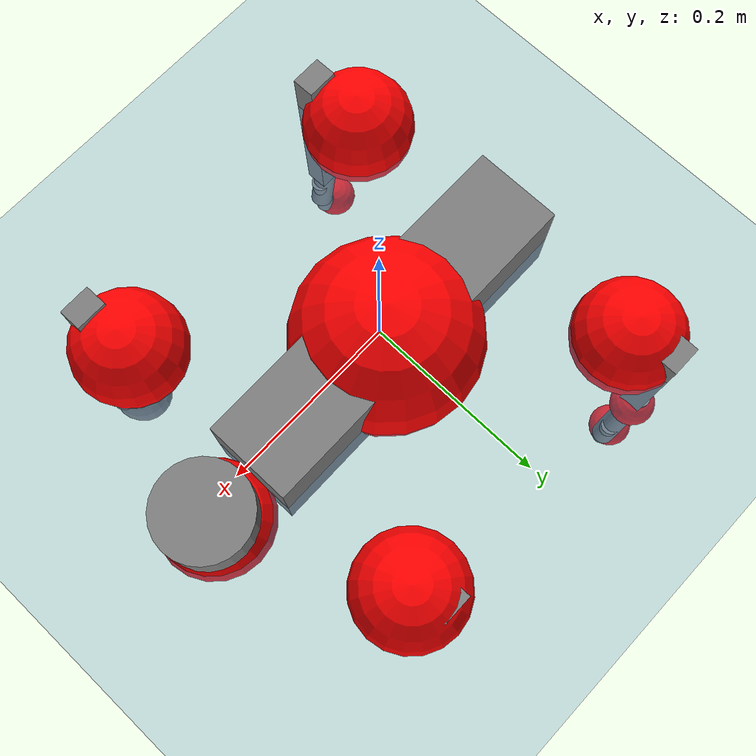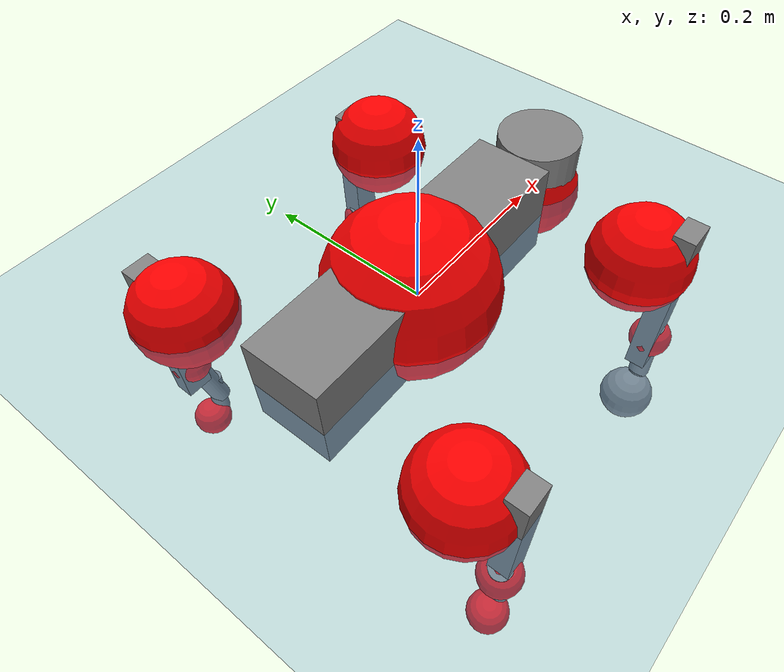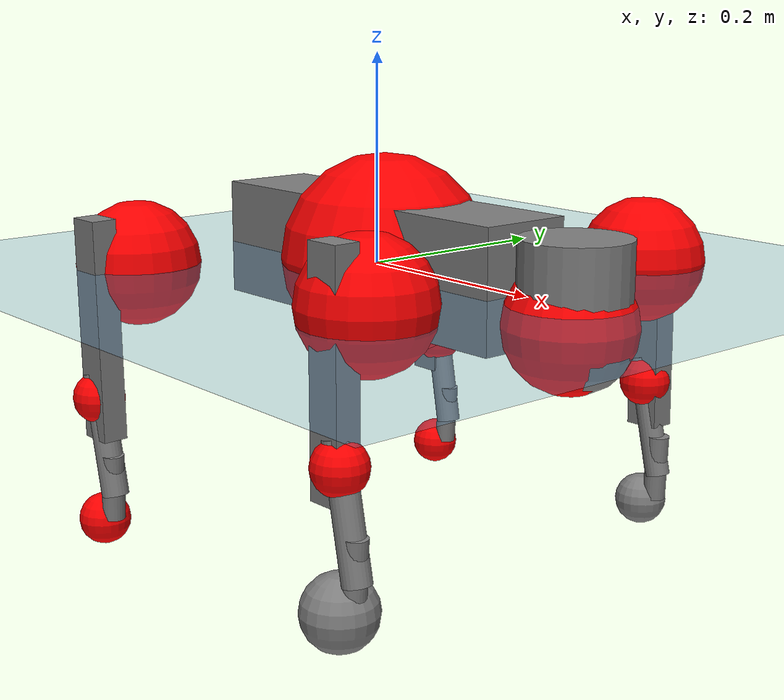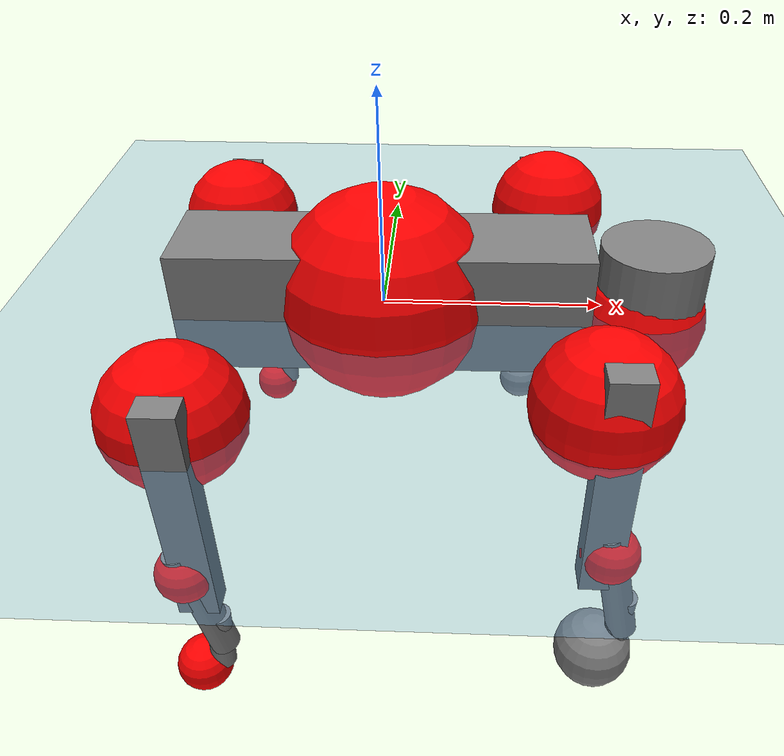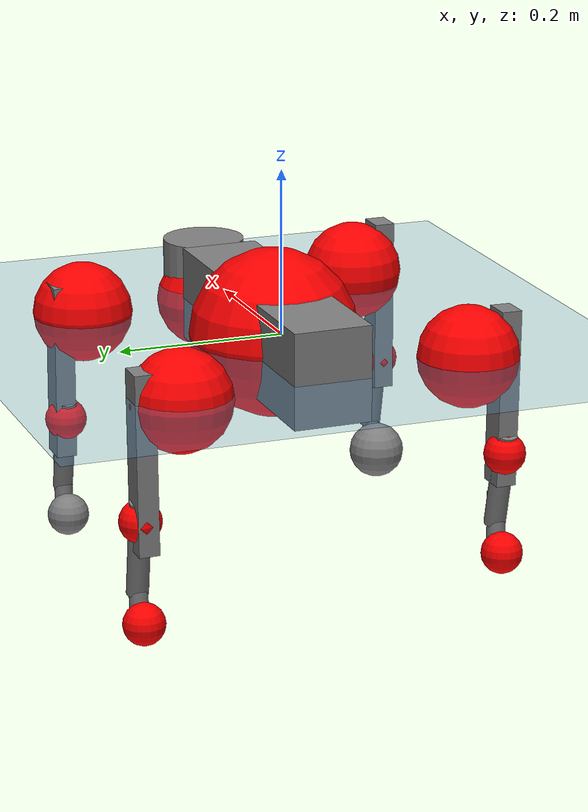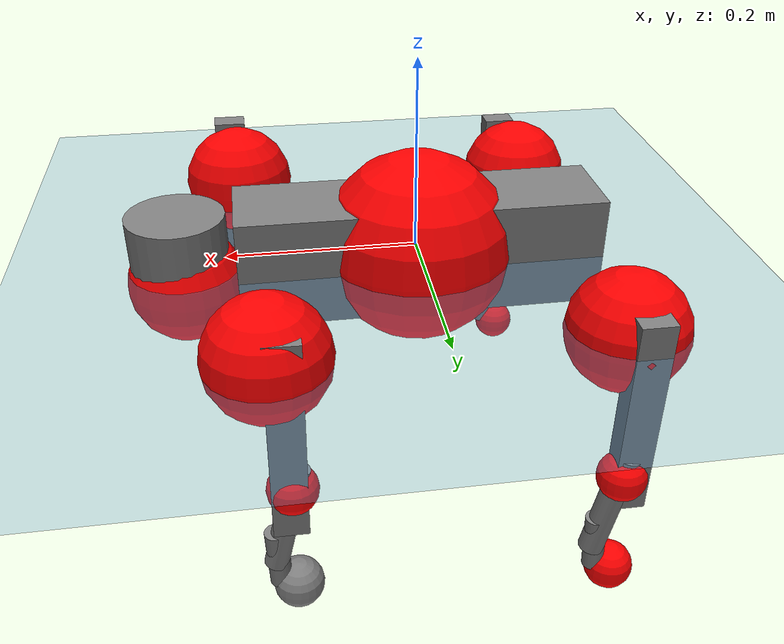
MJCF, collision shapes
<mujoco model="go2">
  <compiler angle="radian" assetdir="assets" balanceinertia="true" inertiafromgeom="false"/>

  <option timestep="0.005" density="1.2" viscosity="2e-05"/>

  <size nkey="1"/>

  <visual>
    <quality shadowsize="8192"/>
    <map shadowclip="0.5"/>
  </visual>

  <default>
    <default class="/">
      <geom contype="0" conaffinity="0" group="1" solref="-1000 -80"/>
      <site size="0.01 0.005 0.005" group="5"/>
      <general forcelimited="true" biastype="affine" gainprm="20" biasprm="0 -20 -0.5"/>
      <default class="go2">
        <joint armature="0.01" damping="0.01" frictionloss="0.2"/>
        <geom condim="1" margin="0.001"/>
        <default class="visual">
          <geom type="mesh" group="2"/>
        </default>
        <default class="collision">
          <geom group="3"/>
          <default class="foot">
            <geom size="0.022 0 0" condim="6" priority="1" friction="0.8 0.02 0.01" solimp="0.015 1 0.022"/>
          </default>
        </default>
        <default class="reward_collision_sphere">
          <geom group="5" rgba="1 0 0 1"/>
        </default>
      </default>
    </default>
  </default>

  <asset>
    <texture type="skybox" colorspace="auto" name="//unnamed_texture_0" builtin="gradient" rgb1="0.95 0.95 0.95" rgb2="0.95 0.95 0.95" width="100" height="600"/>
    <texture type="2d" colorspace="auto" name="texplane" builtin="checker" rgb1="0.345 0.575 0.748" rgb2="0.345 0.575 0.748" markrgb="1 1 1" width="512" height="512"/>
    <material name="MatPlane" class="/" texture="texplane" texuniform="true" texrepeat="2 2" specular="0.9"/>
    <material name="metal" class="/" rgba="0.9 0.95 0.95 1"/>
    <material name="black" class="/" rgba="0 0 0 1"/>
    <material name="white" class="/"/>
    <material name="gray" class="/" rgba="0.671705 0.692426 0.77427 1"/>
    <mesh name="base_0" class="/" file="base_0.obj"/>
    <mesh name="base_1" class="/" file="base_1.obj"/>
    <mesh name="base_2" class="/" file="base_2.obj"/>
    <mesh name="base_3" class="/" file="base_3.obj"/>
    <mesh name="base_4" class="/" file="base_4.obj"/>
    <mesh name="hip_0" class="/" file="hip_0.obj"/>
    <mesh name="hip_1" class="/" file="hip_1.obj"/>
    <mesh name="thigh_0" class="/" file="thigh_0.obj"/>
    <mesh name="thigh_1" class="/" file="thigh_1.obj"/>
    <mesh name="thigh_mirror_0" class="/" file="thigh_mirror_0.obj"/>
    <mesh name="thigh_mirror_1" class="/" file="thigh_mirror_1.obj"/>
    <mesh name="calf_0" class="/" file="calf_0.obj"/>
    <mesh name="calf_1" class="/" file="calf_1.obj"/>
    <mesh name="calf_mirror_0" class="/" file="calf_mirror_0.obj"/>
    <mesh name="calf_mirror_1" class="/" file="calf_mirror_1.obj"/>
    <mesh name="foot" class="/" file="foot.obj"/>
  </asset>

  <worldbody>
    <geom name="floor" class="/" size="100 100 0.125" type="plane" group="0" material="MatPlane"/>
    <light name="toplight_shadow" class="/" pos="0 0 5" dir="0.0990148 0.0990148 -0.990148" type="directional" ambient="0.04 0.04 0.04" diffuse="0.55 0.55 0.55" specular="0.12 0.12 0.12"/>
    <light name="toplight_fill" class="/" pos="0 0 5" dir="0.0990148 0.0990148 -0.990148" type="directional" castshadow="false" ambient="0.04 0.04 0.04" diffuse="0.3 0.3 0.3" specular="0.08 0.08 0.08"/>
    <body name="trunk" childclass="go2" pos="-0.000263478 0.00961262 0.00510487" quat="0.999988 -0.00234063 -0.00187796 0.00379368">
      <inertial pos="0.026451 0.0145625 -0.0131333" quat="-0.0153036 0.686388 -0.00714014 0.72704" mass="7.09362" diaginertia="0.0715382 1.06492 0.00164023"/>
      <joint name="//unnamed_joint_0" type="free" armature="0" damping="0" frictionloss="0"/>
      <geom name="//unnamed_geom_1" class="visual" material="black" mesh="base_0"/>
      <geom name="//unnamed_geom_2" class="visual" material="black" mesh="base_1"/>
      <geom name="//unnamed_geom_3" class="visual" material="black" mesh="base_2"/>
      <geom name="//unnamed_geom_4" class="visual" material="white" mesh="base_3"/>
      <geom name="//unnamed_geom_5" class="visual" material="gray" mesh="base_4"/>
      <geom name="trunk_1" class="collision" size="0.188522 0.046855 0.057128" type="box"/>
      <geom name="trunk_2" class="collision" size="0.0501123 0.045101" pos="0.246106 0 0.00581668" type="cylinder"/>
      <geom name="trunk_3" class="collision" size="0.0471055" pos="0.253014 0 -0.0349001"/>
      <geom name="//unnamed_geom_9" class="reward_collision_sphere" size="0.100225"/>
      <geom name="//unnamed_geom_10" class="reward_collision_sphere" size="0.0601347" pos="0.241788 0 -0.0261751"/>
      <site name="imu" pos="-0.0132669 -0.00451444 0.020198" size="0.0100225"/>
      <camera name="track" pos="0 -3.12308 0" quat="0.707107 0.707107 0 0" mode="trackcom"/>
      <camera name="ego_camera" pos="0.269421 0 0.0261751" quat="-0.5 -0.5 0.5 0.5"/>
      <body name="FL_hip" pos="0.16551 0.0742756 -0.00167413" quat="1 0.000234799 6.56431e-05 -4.85166e-05">
        <inertial pos="-0.00305753 0.0148352 0.000574802" quat="0.518323 0.529127 0.436329 0.510865" mass="0.651212" diaginertia="0.000410868 0.00575458 3.07836e-05"/>
        <joint name="FL_hip_joint" pos="0 0 0" axis="0.999151 0.0257379 -0.0321559" range="-0.889414 1.10584" armature="0.0111207" damping="0.00665164" frictionloss="0.194671"/>
        <geom name="//unnamed_geom_11" class="visual" material="metal" mesh="hip_0"/>
        <geom name="//unnamed_geom_12" class="visual" material="gray" mesh="hip_1"/>
        <geom name="//unnamed_geom_13" class="collision" size="0.0461033 0.0200449" pos="0 0.124923 0" quat="0.707107 0.707107 0 0" type="cylinder"/>
        <geom name="//unnamed_geom_14" class="reward_collision_sphere" size="0.0601347" pos="0 0.109308 0"/>
        <body name="FL_thigh" pos="-0.0116084 0.141229 -0.00469022" quat="0.999972 0.000840893 -0.00745548 -2.18691e-05">
          <inertial pos="-0.00332861 -0.049864 -0.0160427" quat="0.816908 0.0711298 -0.0363822 0.571207" mass="1.05283" diaginertia="0.00333439 0.0447686 5.84404e-05"/>
          <joint name="FL_thigh_joint" pos="0 0 0" axis="-0.0492775 0.998752 -0.00815552" range="-1.37432 3.7621" armature="0.00253353" damping="0" frictionloss="0.283106"/>
          <geom name="//unnamed_geom_15" class="visual" material="metal" mesh="thigh_0"/>
          <geom name="//unnamed_geom_16" class="visual" material="gray" mesh="thigh_1"/>
          <geom name="//unnamed_geom_17" class="collision" size="0.106739 0.0122775 0.0170382" pos="0 0 -0.0619477" quat="0.707107 0 0.707107 0" type="box"/>
          <body name="FL_calf" pos="-0.00350804 -0.00351701 -0.124643" quat="1 -0.000324553 -0.00020285 0.000437042">
            <inertial pos="0.0182167 0.00812406 -0.0708088" quat="0.720384 0.0251485 0.00395042 0.693108" mass="0.251944" diaginertia="0.000807452 0.0125807 4.02884e-06"/>
            <joint name="FL_calf_joint" pos="0 0 0" axis="-0.0226484 0.999539 -0.0202385" range="-3.02497 -1.06368" armature="0.014507" damping="0.0705877" frictionloss="0.146764"/>
            <geom name="//unnamed_geom_18" class="visual" material="gray" mesh="calf_0"/>
            <geom name="//unnamed_geom_19" class="visual" material="black" mesh="calf_1"/>
            <geom name="FL_calf0" class="collision" size="0.0120269 0.0601347" pos="0.00690824 0 -0.0349001" quat="0.994493 0 -0.104807 0" type="cylinder"/>
            <geom name="//unnamed_geom_21" class="collision" size="0.0110247 0.032573" pos="0.0172706 0 -0.0860869" quat="0.999688 0 0.0249974 0" type="cylinder"/>
            <geom name="//unnamed_geom_22" class="visual" pos="0 0 -0.123895" quat="1 0 0 0" material="black" mesh="foot"/>
            <geom name="FL_foot" class="foot" size="0.0252863" pos="-0.00172706 0 -0.123895"/>
            <geom name="//unnamed_geom_24" class="reward_collision_sphere" size="0.0250561"/>
            <geom name="//unnamed_geom_25" class="reward_collision_sphere" size="0.0250561" pos="-0.00172706 0 -0.123895"/>
            <site name="FL_foot" class="foot" pos="-0.00172706 0 -0.123895" size="0.0100225"/>
          </body>
        </body>
      </body>
      <body name="FR_hip" pos="0.181884 -0.0655431 0.00774138" quat="0.999998 0.000601102 0.000576715 0.00167477">
        <inertial pos="-0.00212993 -0.00923177 0.00667025" quat="0.473643 0.546393 0.518346 0.456546" mass="0.735339" diaginertia="0.000478942 0.00553879 2.9751e-05"/>
        <joint name="FR_hip_joint" pos="0 0 0" axis="0.999138 0.0414778 0.00181604" stiffness="0.0772171" range="-1.08156 0.801855" armature="0.0131126" damping="0.0114109" frictionloss="0.153116"/>
        <geom name="//unnamed_geom_26" class="visual" pos="0 8.53622e-09 3.66136e-07" quat="4.63268e-05 1 0 0" material="metal" mesh="hip_0"/>
        <geom name="//unnamed_geom_27" class="visual" pos="0 1.38382e-08 -9.05595e-07" quat="4.63268e-05 1 0 0" material="gray" mesh="hip_1"/>
        <geom name="//unnamed_geom_28" class="collision" size="0.0461033 0.0200449" pos="0 -0.124923 0" quat="0.707107 0.707107 0 0" type="cylinder"/>
        <geom name="//unnamed_geom_29" class="reward_collision_sphere" size="0.0601347" pos="0 -0.109308 0"/>
        <body name="FR_thigh" pos="0.00639279 -0.14842 0.012802" quat="0.999999 -5.12518e-05 -0.000933901 0.000852667">
          <inertial pos="-0.01081 0.0440987 -0.0325323" quat="0.542131 0.00556595 0.0910951 0.835323" mass="1.07493" diaginertia="0.00315692 0.0537847 5.79792e-05"/>
          <joint name="FR_thigh_joint" pos="0 0 0" axis="-0.0136856 -0.999856 0.00999785" range="-3.48682 1.45814" armature="0.0158834" damping="0" frictionloss="0.290708"/>
          <geom name="//unnamed_geom_30" class="visual" material="metal" mesh="thigh_mirror_0"/>
          <geom name="//unnamed_geom_31" class="visual" material="gray" mesh="thigh_mirror_1"/>
          <geom name="//unnamed_geom_32" class="collision" size="0.106739 0.0122775 0.0170382" pos="0 0 -0.0619477" quat="0.707107 0 0.707107 0" type="box"/>
          <body name="FR_calf" pos="0.00716648 -0.00105324 -0.136832" quat="0.999998 0.000422663 -0.000322556 0.00176743">
            <inertial pos="0.0144823 -0.00847717 -0.0844826" quat="0.686093 -0.00554223 0.0239481 0.727099" mass="0.197242" diaginertia="0.000626926 0.00965861 3.19579e-06"/>
            <joint name="FR_calf_joint" pos="0 0 0" axis="0.00747537 -0.999972 6.31767e-05" range="0.728479 2.63227" armature="0.0112208" damping="0.0801516" frictionloss="0.259362"/>
            <geom name="//unnamed_geom_33" class="visual" material="gray" mesh="calf_mirror_0"/>
            <geom name="//unnamed_geom_34" class="visual" material="black" mesh="calf_mirror_1"/>
            <geom name="FR_calf0" class="collision" size="0.0130292 0.0601347" pos="0.0086353 0 -0.0349001" quat="0.995004 0 -0.0998334 0" type="cylinder"/>
            <geom name="//unnamed_geom_36" class="collision" size="0.0110247 0.032573" pos="0.0172706 0 -0.0860869" quat="0.999688 0 0.0249974 0" type="cylinder"/>
            <geom name="//unnamed_geom_37" class="visual" pos="0 0 -0.123895" quat="1 0 0 0" material="black" mesh="foot"/>
            <geom name="FR_foot" class="foot" size="0.0343346" pos="-0.00172706 0 -0.123895"/>
            <geom name="//unnamed_geom_39" class="reward_collision_sphere" size="0.0250561"/>
            <geom name="//unnamed_geom_40" class="reward_collision_sphere" size="0.0250561" pos="-0.00172706 0 -0.123895"/>
            <site name="FR_foot" class="foot" pos="-0.00172706 0 -0.123895" size="0.0100225"/>
          </body>
        </body>
      </body>
      <body name="RL_hip" pos="-0.168654 0.0650748 -0.0107612" quat="1 -0.000252848 2.69217e-06 5.95889e-05">
        <inertial pos="0.00125409 0.00674382 -0.00895615" quat="0.509146 0.511424 0.48302 0.49589" mass="0.875421" diaginertia="0.000476674 0.00652109 3.08276e-05"/>
        <joint name="RL_hip_joint" pos="0 0 0" axis="-0.999474 -0.0299312 0.0125213" range="-1.2895 1.16079" armature="0.0118586" damping="0.00967616" frictionloss="0.0907053"/>
        <geom name="//unnamed_geom_41" class="visual" pos="-2.45546e-09 0 -4.81327e-07" quat="4.63268e-05 0 1 0" material="metal" mesh="hip_0"/>
        <geom name="//unnamed_geom_42" class="visual" pos="-3.9806e-09 0 -4.26869e-07" quat="4.63268e-05 0 1 0" material="gray" mesh="hip_1"/>
        <geom name="//unnamed_geom_43" class="collision" size="0.0461033 0.0200449" pos="0 0.124923 0" quat="0.707107 0.707107 0 0" type="cylinder"/>
        <geom name="//unnamed_geom_44" class="reward_collision_sphere" size="0.0601347" pos="0 0.109308 0"/>
        <body name="RL_thigh" pos="-0.00245072 0.15654 -0.00428322" quat="0.999977 -0.00341386 0.00216517 -0.00549984">
          <inertial pos="-0.00370025 -0.0506065 -0.0245823" quat="0.840438 0.131109 -0.0210386 0.525387" mass="1.35269" diaginertia="0.00310777 0.047953 4.8571e-05"/>
          <joint name="RL_thigh_joint" pos="0 0 0" axis="-0.0742844 0.997183 -0.010433" stiffness="0.00921658" range="-0.481837 4.5471" armature="0.00522262" damping="0" frictionloss="0.283459"/>
          <geom name="//unnamed_geom_45" class="visual" material="metal" mesh="thigh_0"/>
          <geom name="//unnamed_geom_46" class="visual" material="gray" mesh="thigh_1"/>
          <geom name="//unnamed_geom_47" class="collision" size="0.106739 0.0122775 0.0170382" pos="0 0 -0.0619477" quat="0.707107 0 0.707107 0" type="box"/>
          <body name="RL_calf" pos="0.00682479 0.00239565 -0.133978" quat="0.999992 -0.00264579 0.000553154 0.00293584">
            <inertial pos="0.00600189 -0.0127561 -0.0808033" quat="0.707453 0.00179518 -0.00742314 0.706719" mass="0.248972" diaginertia="0.000777912 0.0148137 3.88328e-06"/>
            <joint name="RL_calf_joint" pos="0 0 0" axis="-0.00742358 0.999957 -0.00552385" range="-3.01586 -0.819741" armature="0.00243844" damping="0" frictionloss="0.293424"/>
            <geom name="//unnamed_geom_48" class="visual" material="gray" mesh="calf_0"/>
            <geom name="//unnamed_geom_49" class="visual" material="black" mesh="calf_1"/>
            <geom name="RL_calf0" class="collision" size="0.0130292 0.0601347" pos="0.0086353 0 -0.0349001" quat="0.995004 0 -0.0998334 0" type="cylinder"/>
            <geom name="//unnamed_geom_51" class="collision" size="0.0110247 0.032573" pos="0.0172706 0 -0.0860869" quat="0.999688 0 0.0249974 0" type="cylinder"/>
            <geom name="//unnamed_geom_52" class="visual" pos="0 0 -0.123895" quat="1 0 0 0" material="black" mesh="foot"/>
            <geom name="RL_foot" class="foot" size="0.0230159" pos="-0.00172706 0 -0.123895"/>
            <geom name="//unnamed_geom_54" class="reward_collision_sphere" size="0.0250561"/>
            <geom name="//unnamed_geom_55" class="reward_collision_sphere" size="0.0250561" pos="-0.00172706 0 -0.123895"/>
            <site name="RL_foot" class="foot" pos="-0.00172706 0 -0.123895" size="0.0100225"/>
          </body>
        </body>
      </body>
      <body name="RR_hip" pos="-0.152399 -0.0728404 -0.00423081" quat="0.99997 0.00771807 0.000816135 -0.000597845">
        <inertial pos="0.00372156 0.00202958 0.00213545" quat="0.498233 0.496598 0.497501 0.50759" mass="0.737405" diaginertia="0.000468381 0.00567225 2.81032e-05"/>
        <joint name="RR_hip_joint" pos="0 0 0" axis="-0.999981 -0.00619546 0.000519618" range="-0.977833 0.85185" armature="0.00333987" damping="0.0153803" frictionloss="0.111106"/>
        <geom name="//unnamed_geom_56" class="visual" pos="2.47963e-09 8.53622e-09 -8.47463e-07" quat="2.14617e-09 4.63268e-05 4.63268e-05 -1" material="metal" mesh="hip_0"/>
        <geom name="//unnamed_geom_57" class="visual" pos="3.92083e-09 1.38382e-08 4.78726e-07" quat="2.14617e-09 4.63268e-05 4.63268e-05 -1" material="gray" mesh="hip_1"/>
        <geom name="//unnamed_geom_58" class="collision" size="0.0461033 0.0200449" pos="0 -0.124923 0" quat="0.707107 0.707107 0 0" type="cylinder"/>
        <geom name="//unnamed_geom_59" class="reward_collision_sphere" size="0.0601347" pos="0 -0.109308 0"/>
        <body name="RR_thigh" pos="0.0099001 -0.160201 0.00543987" quat="0.999995 0.000872194 0.00206272 0.0022877">
          <inertial pos="-0.00254884 0.0455369 -0.0176305" quat="0.560044 -0.0194835 0.0928507 0.823013" mass="1.03428" diaginertia="0.00278188 0.0546946 6.22111e-05"/>
          <joint name="RR_thigh_joint" pos="0 0 0" axis="0.000561624 -0.999999 0.0014431" range="-4.55263 0.219144" armature="0.0173063" damping="0" frictionloss="0.2125"/>
          <geom name="//unnamed_geom_60" class="visual" material="metal" mesh="thigh_mirror_0"/>
          <geom name="//unnamed_geom_61" class="visual" material="gray" mesh="thigh_mirror_1"/>
          <geom name="//unnamed_geom_62" class="collision" size="0.106739 0.0122775 0.0170382" pos="0 0 -0.0619477" quat="0.707107 0 0.707107 0" type="box"/>
          <body name="RR_calf" pos="-0.00855873 -0.000736635 -0.130609" quat="1 -3.185e-06 0.000628622 0.000562231">
            <inertial pos="0.0138726 -0.00145245 -0.0833175" quat="0.703635 -0.00951908 -0.000324108 0.710498" mass="0.216729" diaginertia="0.000681926 0.0124949 3.66158e-06"/>
            <joint name="RR_calf_joint" pos="0 0 0" axis="-0.055018 -0.998484 -0.00144345" range="0.582893 2.57514" armature="0.0117229" damping="0.012361" frictionloss="0.118662"/>
            <geom name="//unnamed_geom_63" class="visual" material="gray" mesh="calf_mirror_0"/>
            <geom name="//unnamed_geom_64" class="visual" material="black" mesh="calf_mirror_1"/>
            <geom name="RR_calf0" class="collision" size="0.0130292 0.0601347" pos="0.0086353 0 -0.0349001" quat="0.995004 0 -0.0998334 0" type="cylinder"/>
            <geom name="//unnamed_geom_66" class="collision" size="0.0110247 0.032573" pos="0.0172706 0 -0.0860869" quat="0.999688 0 0.0249974 0" type="cylinder"/>
            <geom name="//unnamed_geom_67" class="visual" pos="0 0 -0.123895" quat="1 0 0 0" material="black" mesh="foot"/>
            <geom name="RR_foot" class="foot" size="0.00933353" pos="-0.00172706 0 -0.123895"/>
            <geom name="//unnamed_geom_69" class="reward_collision_sphere" size="0.0250561"/>
            <geom name="//unnamed_geom_70" class="reward_collision_sphere" size="0.0250561" pos="-0.00172706 0 -0.123895"/>
            <site name="RR_foot" class="foot" pos="-0.00172706 0 -0.123895" size="0.0100225"/>
          </body>
        </body>
      </body>
    </body>
  </worldbody>

  <contact>
    <pair class="/" geom1="floor" geom2="FL_foot" name="//unnamed_contact_0"/>
    <pair class="/" geom1="floor" geom2="FR_foot" name="//unnamed_contact_1"/>
    <pair class="/" geom1="floor" geom2="RL_foot" name="//unnamed_contact_2"/>
    <pair class="/" geom1="floor" geom2="RR_foot" name="//unnamed_contact_3"/>
  </contact>

  <actuator>
    <general name="FL_hip" class="/" joint="FL_hip_joint" forcerange="-17.3934 17.3934" gainprm="21.0452" biasprm="0 -21.0452 -0.488107"/>
    <general name="FL_thigh" class="/" joint="FL_thigh_joint" forcerange="-22.8276 22.8276" gainprm="21.0452" biasprm="0 -21.0452 -0.488107"/>
    <general name="FL_calf" class="/" joint="FL_calf_joint" forcerange="-44.4129 44.4129" gainprm="21.0452" biasprm="0 -21.0452 -0.488107"/>
    <general name="FR_hip" class="/" joint="FR_hip_joint" forcerange="-30.6049 30.6049" gainprm="21.0452" biasprm="0 -21.0452 -0.488107"/>
    <general name="FR_thigh" class="/" joint="FR_thigh_joint" forcerange="-24.1175 24.1175" gainprm="21.0452" biasprm="0 -21.0452 -0.488107"/>
    <general name="FR_calf" class="/" joint="FR_calf_joint" forcerange="-63.4066 63.4066" gainprm="21.0452" biasprm="0 -21.0452 -0.488107"/>
    <general name="RL_hip" class="/" joint="RL_hip_joint" forcerange="-28.5149 28.5149" gainprm="21.0452" biasprm="0 -21.0452 -0.488107"/>
    <general name="RL_thigh" class="/" joint="RL_thigh_joint" forcerange="-24.0131 24.0131" gainprm="21.0452" biasprm="0 -21.0452 -0.488107"/>
    <general name="RL_calf" class="/" joint="RL_calf_joint" forcerange="-37.7784 37.7784" gainprm="21.0452" biasprm="0 -21.0452 -0.488107"/>
    <general name="RR_hip" class="/" joint="RR_hip_joint" forcerange="-30.2988 30.2988" gainprm="21.0452" biasprm="0 -21.0452 -0.488107"/>
    <general name="RR_thigh" class="/" joint="RR_thigh_joint" forcerange="-18.417 18.417" gainprm="21.0452" biasprm="0 -21.0452 -0.488107"/>
    <general name="RR_calf" class="/" joint="RR_calf_joint" forcerange="-23.2939 23.2939" gainprm="21.0452" biasprm="0 -21.0452 -0.488107"/>
  </actuator>

  <sensor>
    <gyro site="imu" name="imu_angular_velocity"/>
    <velocimeter site="imu" name="imu_linear_velocity"/>
    <framelinvel objtype="site" objname="FL_foot" name="FL_foot_global_linear_velocity"/>
    <framelinvel objtype="site" objname="FR_foot" name="FR_foot_global_linear_velocity"/>
    <framelinvel objtype="site" objname="RL_foot" name="RL_foot_global_linear_velocity"/>
    <framelinvel objtype="site" objname="RR_foot" name="RR_foot_global_linear_velocity"/>
  </sensor>

  <keyframe>
    <key name="home" qpos="0 0 0.325 1 0 0 0 0.1 0.8 -1.5 -0.1 -0.8 1.5 -0.1 0.8 -1.5 0.1 -0.8 1.5"/>
  </keyframe>
</mujoco>
